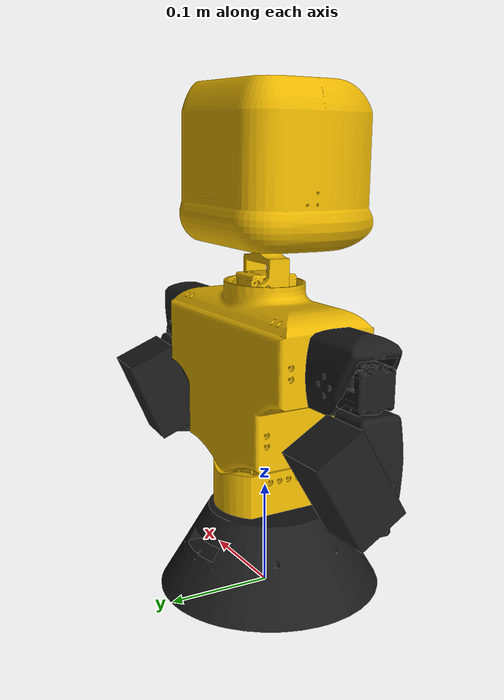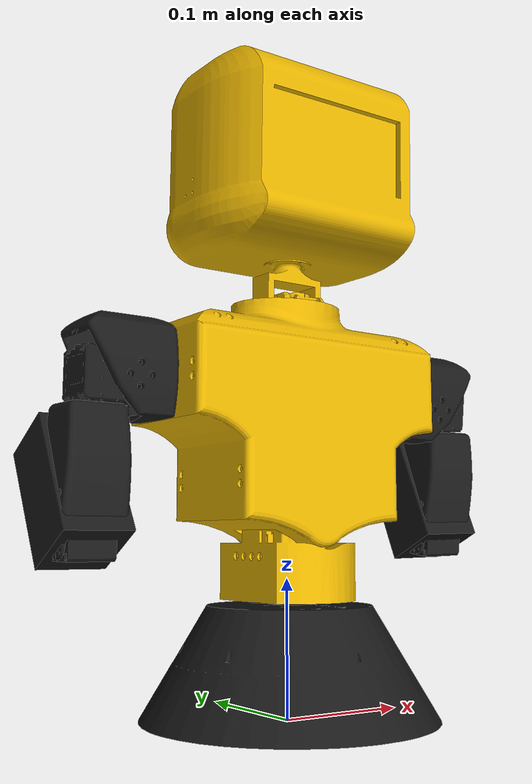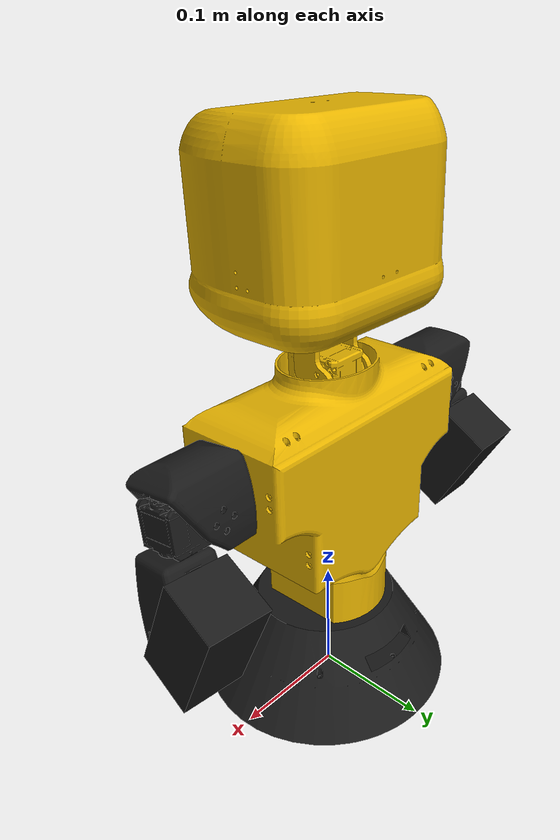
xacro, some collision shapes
<?xml version="1.0"?>
<robot xmlns:xacro="http://www.ros.org/wiki/xacro" name="yaren">

  <xacro:arg name="sim" default="true"/>

  <xacro:arg name="controllers_file"
             default="$(find yaren_master)/config/yaren_controllers.yaml"/>

  <xacro:property name="lim_junta" value="10.0"/>

  <!-- Par y velocidad maximos declarados en el modelo de partida. -->
  <xacro:property name="par_max" value="300"/>
  <xacro:property name="vel_max" value="3"/>

  <xacro:property name="m_cintura"   value="0.15"/>     <!-- link_1 -->
  <xacro:property name="m_torso"     value="0.35"/>     <!-- link_2 -->
  <xacro:property name="m_cuello"    value="0.08"/>     <!-- link_3 -->
  <xacro:property name="m_cabeza"    value="0.06"/>     <!-- link_4 -->
  <xacro:property name="m_hombro_a"  value="0.10"/>     <!-- link_5,  link_9 -->
  <xacro:property name="m_hombro_b"  value="0.10"/>     <!-- link_6,  link_10 -->
  <xacro:property name="m_brazo"     value="0.12"/>     <!-- link_7,  link_11 -->
  <xacro:property name="m_antebrazo" value="0.15"/>     <!-- link_8,  link_12 -->

  <xacro:include filename="$(find yaren_description)/urdf/yaren_materials.xacro"/>
  <xacro:include filename="$(find yaren_description)/urdf/yaren_macros.xacro"/>
  <xacro:include filename="$(find yaren_description)/urdf/yaren_gazebo.xacro"/>
  <xacro:include filename="$(find yaren_description)/urdf/yaren_ros2_control.xacro"/>

  <link name="world"/>

  <joint name="base_joint" type="fixed">
    <parent link="world"/>
    <child  link="base_link"/>
    <origin xyz="0.0 0.0 0.064" rpy="0.0 0.0 0.0"/>
  </joint>

  <link name="base_link">
    <inertial>
      <origin xyz="-0.011194 -0.036845 0.215654" rpy="0 0 0" />
      <mass value="1.3678" />
      <inertia ixx="0.00319" ixy="0.0" ixz="0.0" iyy="0.00601" iyz="0.0" izz="0.00319" />
    </inertial>
    <visual>
      <origin xyz="0.01 0.2105 0.0" rpy="0 0 0" />
      <geometry>
        <mesh filename="package://yaren_description/meshes/base_link.STL" />
      </geometry>
      <material name="Black"/>
    </visual>
    <collision>
      <origin xyz="0.01 0.2105 0.0" rpy="0 0 0" />
      <geometry>
        <mesh filename="package://yaren_description/meshes/base_link.STL" />
      </geometry>
    </collision>
  </link>
  <!-- ==================================================================
       CINTURA - 2 GDL
       ================================================================== -->

  <!-- Eje +Z del mundo: gira todo el robot sobre el eje vertical. -->
  <xacro:articulacion nombre="joint_1" padre="base_link" hijo="link_1"
                      xyz="0.0 0.0 0.020523" rpy="1.5708 0.0 1.6008"
                      axis="0 1 0"
                      inferior="${-lim_junta}" superior="${lim_junta}"
                      esfuerzo="${par_max}" velocidad="${vel_max}"/>

  <xacro:eslabon nombre="link_1" malla="Link_1.STL" material="MediumYellow"
                 masa="${m_cintura}"
                 cx="0.060" cy="0.0715" cz="0.060"
                 ox="0.0"   oy="0.0358" oz="0.0"/>

  <!-- Eje casi -Y del mundo: inclina el torso adelante y atras. -->
  <xacro:articulacion nombre="joint_2" padre="link_1" hijo="link_2"
                      xyz="0.0 0.0715 0.0" rpy="0.0 1.5708 0.0"
                      axis="0 0 -1"
                      inferior="${-lim_junta}" superior="${lim_junta}"
                      esfuerzo="${par_max}" velocidad="${vel_max}"/>

  <xacro:eslabon nombre="link_2" malla="Link_2.STL" material="MediumYellow"
                 masa="${m_torso}"
                 cx="0.240" cy="0.125" cz="0.070"
                 ox="0.0"   oy="0.058" oz="0.0"/>

  <!-- Eje casi +Z del mundo: gira la cabeza a izquierda y derecha. -->
  <xacro:articulacion nombre="joint_3" padre="link_2" hijo="link_3"
                      xyz="0.0 0.1145 -0.012" rpy="-1.5908 0.0 0.0"
                      axis="0 0 1"
                      inferior="${-lim_junta}" superior="${lim_junta}"
                      esfuerzo="${par_max}" velocidad="${vel_max}"/>

  <xacro:eslabon nombre="link_3" malla="Link_3.STL" material="MediumYellow"
                 masa="${m_cuello}"
                 cx="0.050" cy="0.050" cz="0.050"
                 ox="0.0"   oy="-0.012" oz="0.010"/>

  <!-- Segundo grado de libertad de la cabeza, perpendicular al anterior. -->
  <xacro:articulacion nombre="joint_4" padre="link_3" hijo="link_4"
                      xyz="0.0 -0.024 0.02" rpy="1.5708 0.0 1.5508"
                      axis="0 0 -1"
                      inferior="${-lim_junta}" superior="${lim_junta}"
                      esfuerzo="${par_max}" velocidad="${vel_max}"/>

  <xacro:eslabon nombre="link_4" malla="Link_4.STL" material="MediumYellow"
                 masa="${m_cabeza}"
                 cx="0.050" cy="0.050" cz="0.050"/>

  <!-- Eje casi -X del mundo: eleva el brazo adelante y atras. -->
  <xacro:articulacion nombre="joint_5" padre="link_2" hijo="link_5"
                      xyz="0.10575 0.09925 0.0" rpy="3.1616 0.0 3.1416"
                      axis="-1 0 0"
                      inferior="${-lim_junta}" superior="${lim_junta}"
                      esfuerzo="${par_max}" velocidad="${vel_max}"/>

  <xacro:eslabon nombre="link_5" malla="Link_5.STL" material="Black"
                 masa="${m_hombro_a}"
                 cx="0.050" cy="0.045" cz="0.045"
                 ox="-0.016" oy="-0.010" oz="0.0"/>

  <!-- Eje casi +Y del mundo: separa el brazo del cuerpo. -->
  <xacro:articulacion nombre="joint_6" padre="link_5" hijo="link_6"
                      xyz="-0.031746 -0.0195 0.0" rpy="0.0 0.0 -1.5708"
                      axis="0 0 -1"
                      inferior="${-lim_junta}" superior="${lim_junta}"
                      esfuerzo="${par_max}" velocidad="${vel_max}"/>

  <xacro:eslabon nombre="link_6" malla="Link_6.STL" material="Black"
                 masa="${m_hombro_b}"
                 cx="0.045" cy="0.045" cz="0.045"
                 ox="0.010" oy="-0.012" oz="0.0"/>

  <!-- Tercer eje del hombro: rotacion del brazo sobre su propio eje. -->
  <xacro:articulacion nombre="joint_7" padre="link_6" hijo="link_7"
                      xyz="0.019 -0.024 0.00047" rpy="1.5808 0.0 0.0"
                      axis="1 0 0"
                      inferior="${-lim_junta}" superior="${lim_junta}"
                      esfuerzo="${par_max}" velocidad="${vel_max}"/>

  <!-- Segmento largo del brazo: el codo esta a 0.09125 m sobre X. -->
  <xacro:eslabon nombre="link_7" malla="Link_7.STL" material="Black"
                 masa="${m_brazo}"
                 cx="0.100" cy="0.045" cz="0.045"
                 ox="0.046" oy="0.0"   oz="0.0"/>

  <!-- Codo. -->
  <xacro:articulacion nombre="joint_8" padre="link_7" hijo="link_8"
                      xyz="0.09125 0.0 0.0" rpy="1.5708 0.0 -2.5937"
                      axis="0 1 0"
                      inferior="${-lim_junta}" superior="${lim_junta}"
                      esfuerzo="${par_max}" velocidad="${vel_max}"/>

  <xacro:eslabon nombre="link_8" malla="Link_8.STL" material="Black"
                 masa="${m_antebrazo}"
                 cx="0.090" cy="0.050" cz="0.050"
                 ox="0.040" oy="0.0"   oz="0.0"/>

  <!-- Eje casi +X del mundo: es el espejo del primer eje del otro
       hombro, lo que explica que una postura simetrica requiera valores
       de signo opuesto en los dos brazos. -->
  <xacro:articulacion nombre="joint_9" padre="link_2" hijo="link_9"
                      xyz="-0.10575 0.09925 0.0" rpy="-0.14 0.0 0.0"
                      axis="-1 0 0"
                      inferior="${-lim_junta}" superior="${lim_junta}"
                      esfuerzo="${par_max}" velocidad="${vel_max}"/>

  <xacro:eslabon nombre="link_9" malla="Link_9.STL" material="Black"
                 masa="${m_hombro_a}"
                 cx="0.050" cy="0.045" cz="0.045"
                 ox="-0.016" oy="-0.010" oz="0.0"/>

  <xacro:articulacion nombre="joint_10" padre="link_9" hijo="link_10"
                      xyz="-0.031745 -0.0195 0.0" rpy="0.0 0.0 -1.6108"
                      axis="0 0 -1"
                      inferior="${-lim_junta}" superior="${lim_junta}"
                      esfuerzo="${par_max}" velocidad="${vel_max}"/>

  <xacro:eslabon nombre="link_10" malla="Link_10.STL" material="Black"
                 masa="${m_hombro_b}"
                 cx="0.045" cy="0.045" cz="0.045"
                 ox="0.010" oy="-0.012" oz="0.0"/>

  <xacro:articulacion nombre="joint_11" padre="link_10" hijo="link_11"
                      xyz="0.019 -0.024 -0.0005" rpy="-1.4808 0.0 0.0"
                      axis="1 0 0"
                      inferior="${-lim_junta}" superior="${lim_junta}"
                      esfuerzo="${par_max}" velocidad="${vel_max}"/>

  <xacro:eslabon nombre="link_11" malla="Link_11.STL" material="Black"
                 masa="${m_brazo}"
                 cx="0.100" cy="0.045" cz="0.045"
                 ox="0.046" oy="0.0"   oz="0.0"/>

  <!-- Codo. -->
  <xacro:articulacion nombre="joint_12" padre="link_11" hijo="link_12"
                      xyz="0.09125 0.0 0.0" rpy="1.5708 0.0 -2.5867"
                      axis="0 1 0"
                      inferior="${-lim_junta}" superior="${lim_junta}"
                      esfuerzo="${par_max}" velocidad="${vel_max}"/>

  <xacro:eslabon nombre="link_12" malla="Link_12.STL" material="Black"
                 masa="${m_antebrazo}"
                 cx="0.090" cy="0.050" cz="0.050"
                 ox="0.040" oy="0.0"   oz="0.0"/>

  <xacro:yaren_gazebo controladores="$(arg controllers_file)"/>
  <xacro:yaren_ros2_control sim="$(arg sim)"/>

</robot>

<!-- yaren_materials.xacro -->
<!--
  yaren_materials.xacro
  Materiales de visualizacion del modelo.
-->
<robot xmlns:xacro="http://www.ros.org/wiki/xacro">

  <material name="MediumYellow">
    <color rgba="0.9 0.7 0.0 1.0"/>
  </material>

  <material name="Black">
    <color rgba="0.1 0.1 0.1 1.0"/>
  </material>

</robot>

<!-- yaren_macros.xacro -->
<!--
  yaren_macros.xacro
  Macros reutilizables para construir el modelo: tensores de inercia,
  eslabones (visual + colision + inercia) y articulaciones revolutas.
-->
<robot xmlns:xacro="http://www.ros.org/wiki/xacro">

  <xacro:macro name="inercia_caja" params="masa dx dy dz *origen">
    <inertial>
      <xacro:insert_block name="origen"/>
      <mass value="${masa}"/>
      <inertia
        ixx="${masa * (dy*dy + dz*dz) / 12.0}"
        iyy="${masa * (dx*dx + dz*dz) / 12.0}"
        izz="${masa * (dx*dx + dy*dy) / 12.0}"
        ixy="0.0" ixz="0.0" iyz="0.0"/>
    </inertial>
  </xacro:macro>

  <xacro:macro name="inercia_cilindro" params="masa radio altura *origen">
    <inertial>
      <xacro:insert_block name="origen"/>
      <mass value="${masa}"/>
      <inertia
        ixx="${masa * (3.0*radio*radio + altura*altura) / 12.0}"
        iyy="${masa * (3.0*radio*radio + altura*altura) / 12.0}"
        izz="${masa * radio * radio / 2.0}"
        ixy="0.0" ixz="0.0" iyz="0.0"/>
    </inertial>
  </xacro:macro>

  <xacro:macro name="eslabon"
               params="nombre malla material masa cx cy cz
                       ox:=0 oy:=0 oz:=0
                       mx:=0 my:=0 mz:=0">
    <link name="${nombre}">

      <visual>
        <origin xyz="${mx} ${my} ${mz}" rpy="0 0 0"/>
        <geometry>
          <mesh filename="package://yaren_description/meshes/${malla}"/>
        </geometry>
        <material name="${material}"/>
      </visual>

      <collision>
        <origin xyz="${ox} ${oy} ${oz}" rpy="0 0 0"/>
        <geometry>
          <box size="${cx} ${cy} ${cz}"/>
        </geometry>
      </collision>

      <xacro:inercia_caja masa="${masa}" dx="${cx}" dy="${cy}" dz="${cz}">
        <origin xyz="${ox} ${oy} ${oz}" rpy="0 0 0"/>
      </xacro:inercia_caja>

    </link>
  </xacro:macro>

  <xacro:macro name="articulacion"
               params="nombre padre hijo xyz rpy axis
                       inferior superior
                       esfuerzo:=10.0 velocidad:=3.0
                       amortiguamiento:=0.5 friccion:=0.1">
    <joint name="${nombre}" type="revolute">
      <origin xyz="${xyz}" rpy="${rpy}"/>
      <parent link="${padre}"/>
      <child  link="${hijo}"/>
      <axis xyz="${axis}"/>
      <limit lower="${inferior}" upper="${superior}"
             effort="${esfuerzo}" velocity="${velocidad}"/>
      <dynamics damping="${amortiguamiento}" friction="${friccion}"/>
    </joint>
  </xacro:macro>

</robot>
